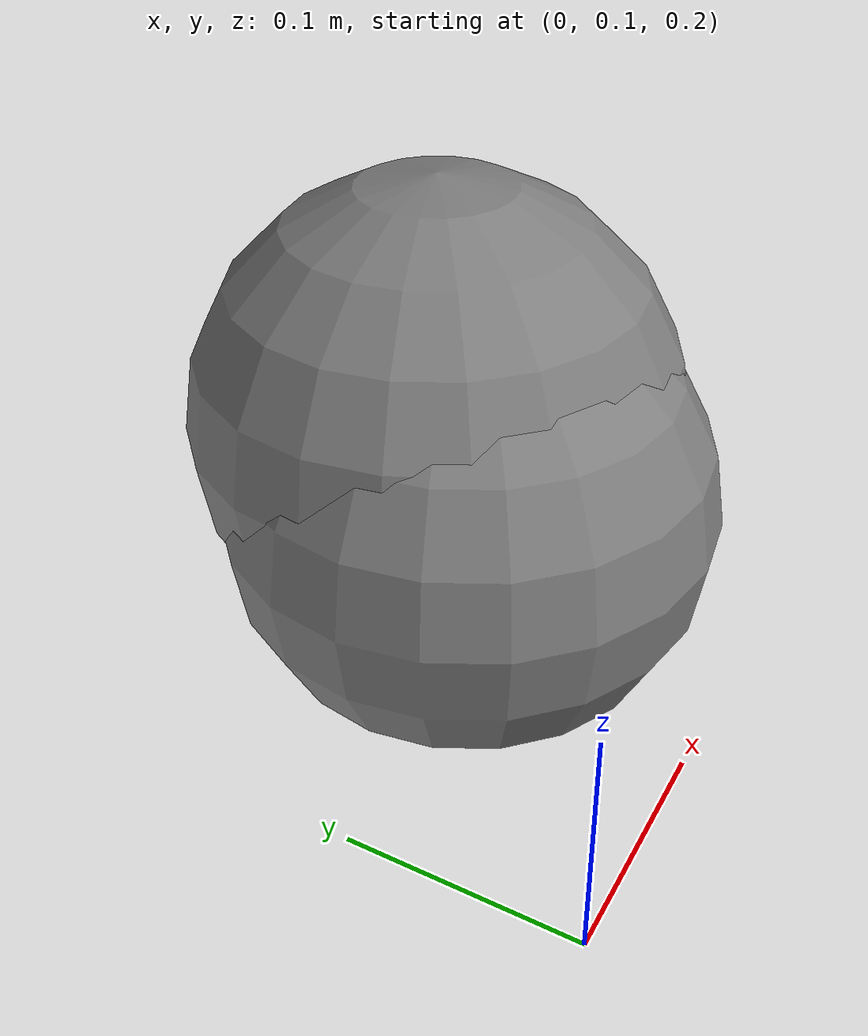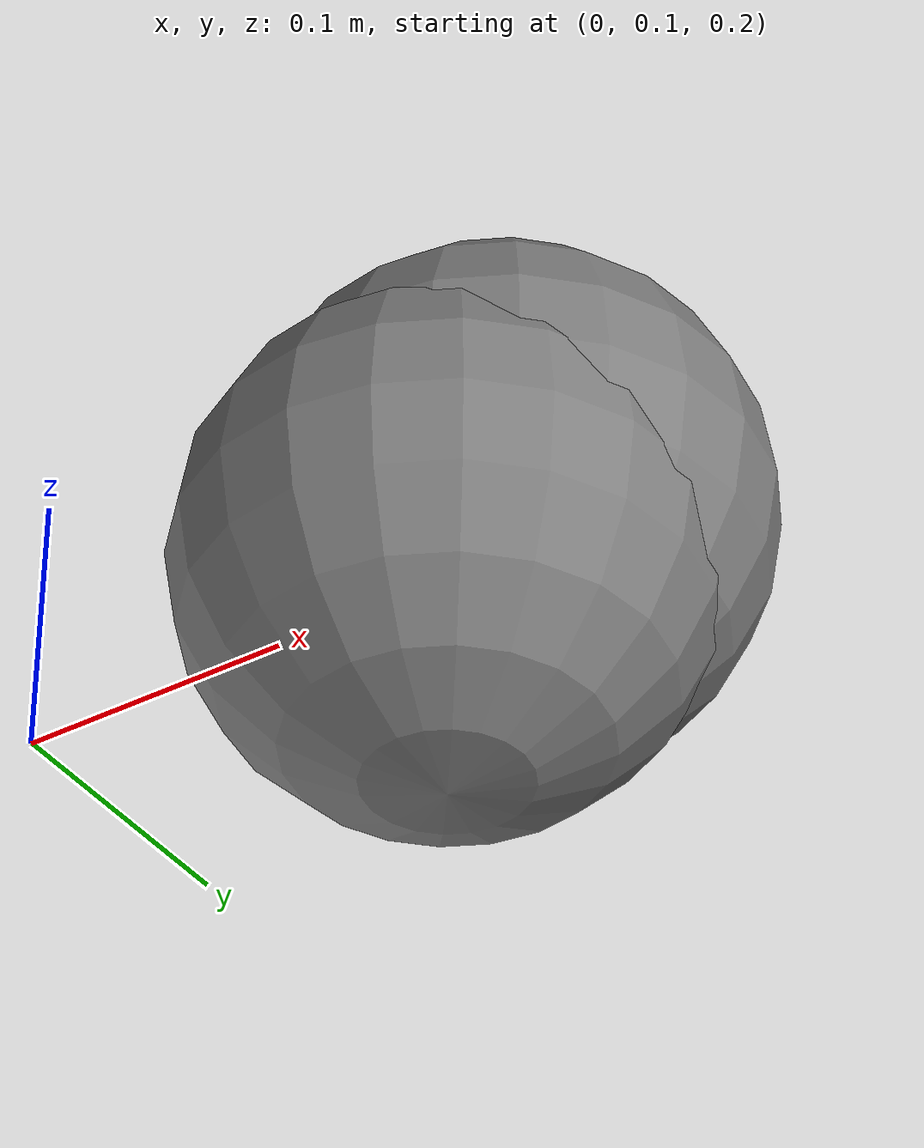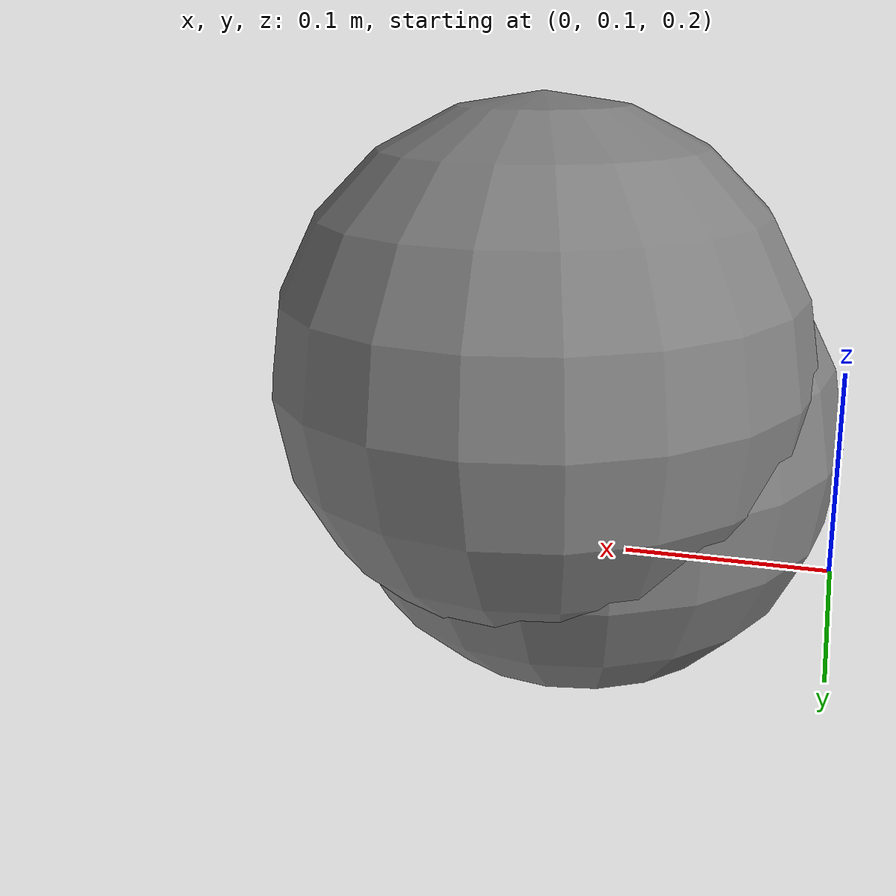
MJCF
<mujoco model="load save load test model with 2 frames">

  <worldbody>
    <frame name="frame1" pos=".1 .2 .3">

      <geom name="geom1" type="sphere" size=".1"/>
      <body name="root1">
        <joint name="joint1"/>
        <geom type="sphere" size=".1"/>
      </body>

      <body name="root2">
        <frame name="frame2" pos=".01 .02 .03">
          <geom type="sphere" size=".1"/>
          <body name="root22">
            <geom type="sphere" size=".1"/>
          </body>
        </frame><!-- end frame2 -->
      </body>

    </frame> <!-- end frame1 -->
  </worldbody>

</mujoco>
